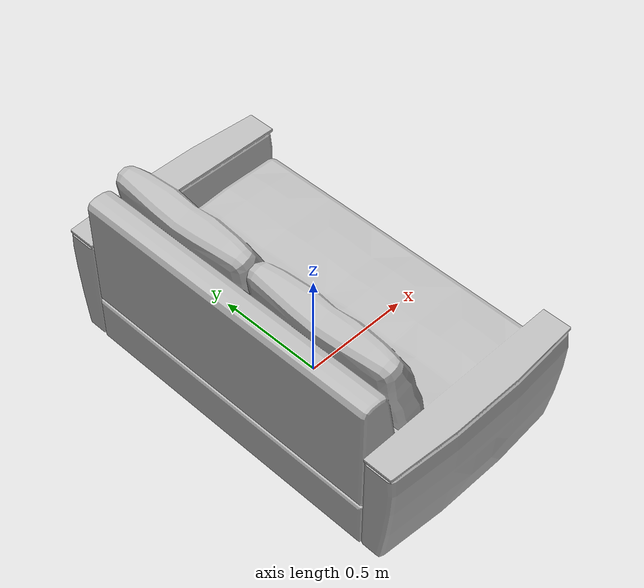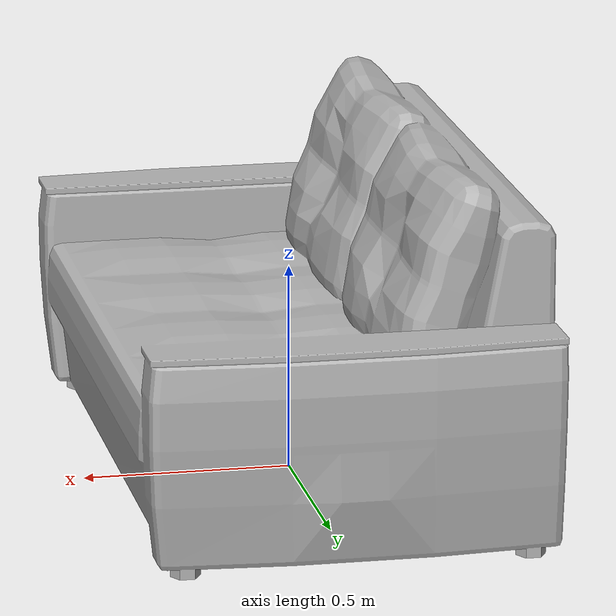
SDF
<?xml version='1.0'?>
<sdf version='1.4'>
  <model name='s__644'>
    <pose>0 0 0 0 0 0</pose>
    <static>true</static>
    <link name='link'>
      <collision name='collision'>
        <pose>0 0 0 0 0 0</pose>
        <geometry>
          <box>
            <size>0.96 1.74 2</size>
          </box>
        </geometry>
      </collision>
      <visual name='visual'>
        <pose>0 0 0 0 0 0</pose>
        <geometry>
          <mesh><uri>model://s__644/s__644.dae</uri></mesh>
        </geometry>
      </visual>
    </link>
  </model>
</sdf>
